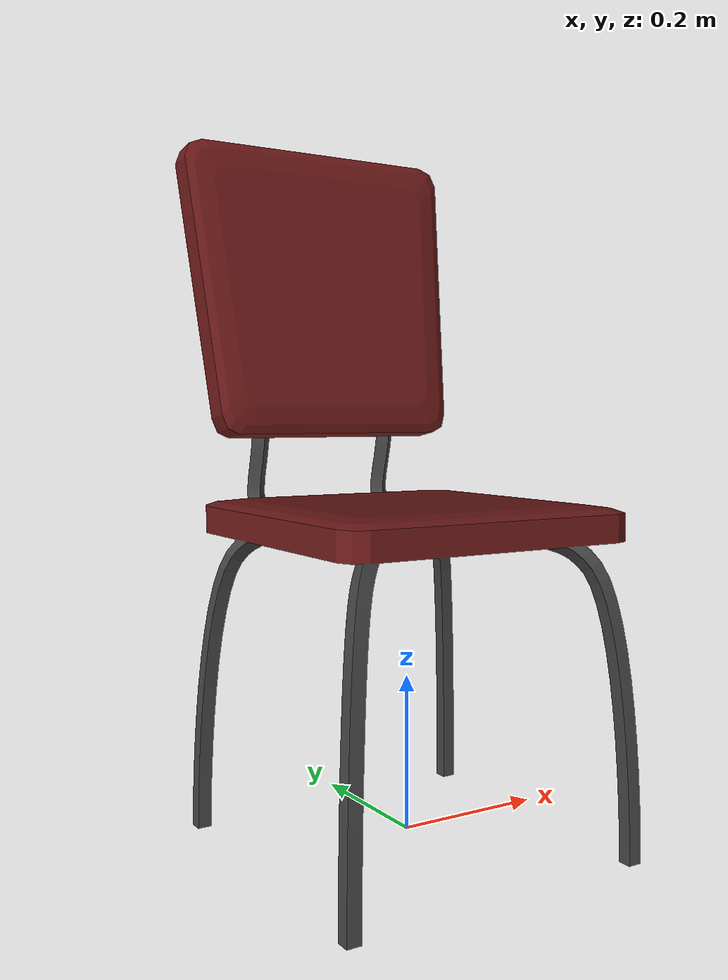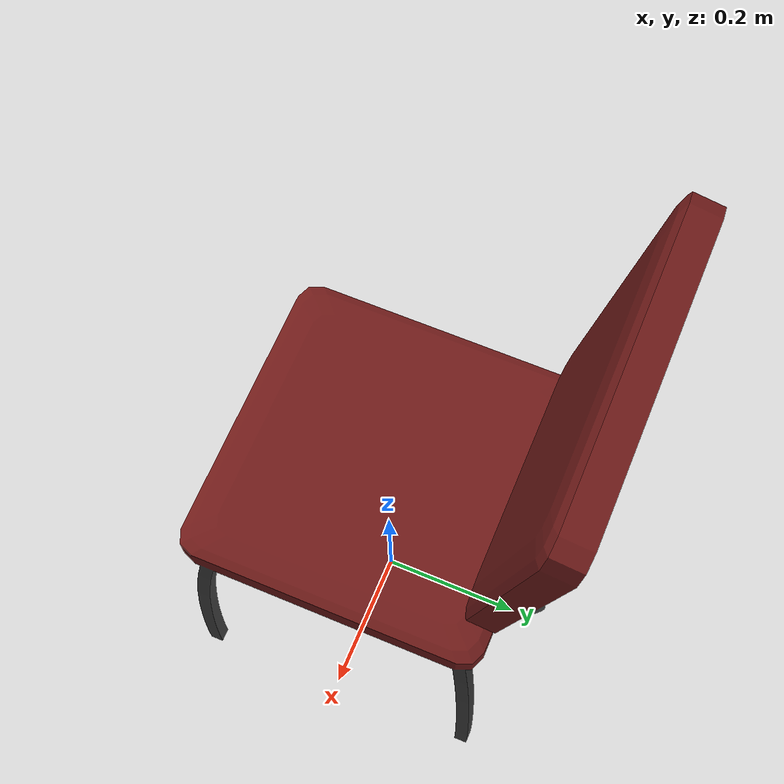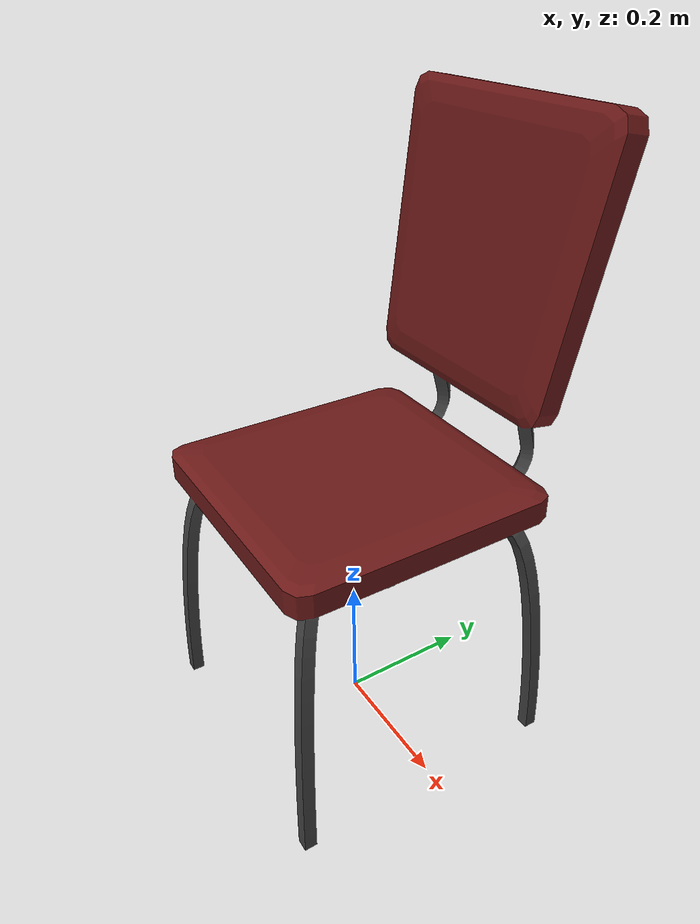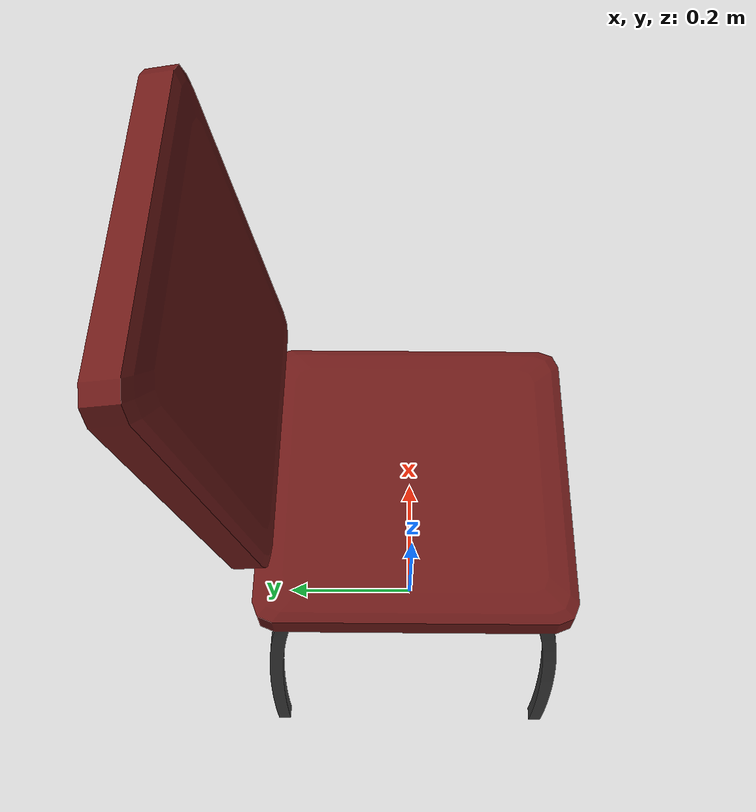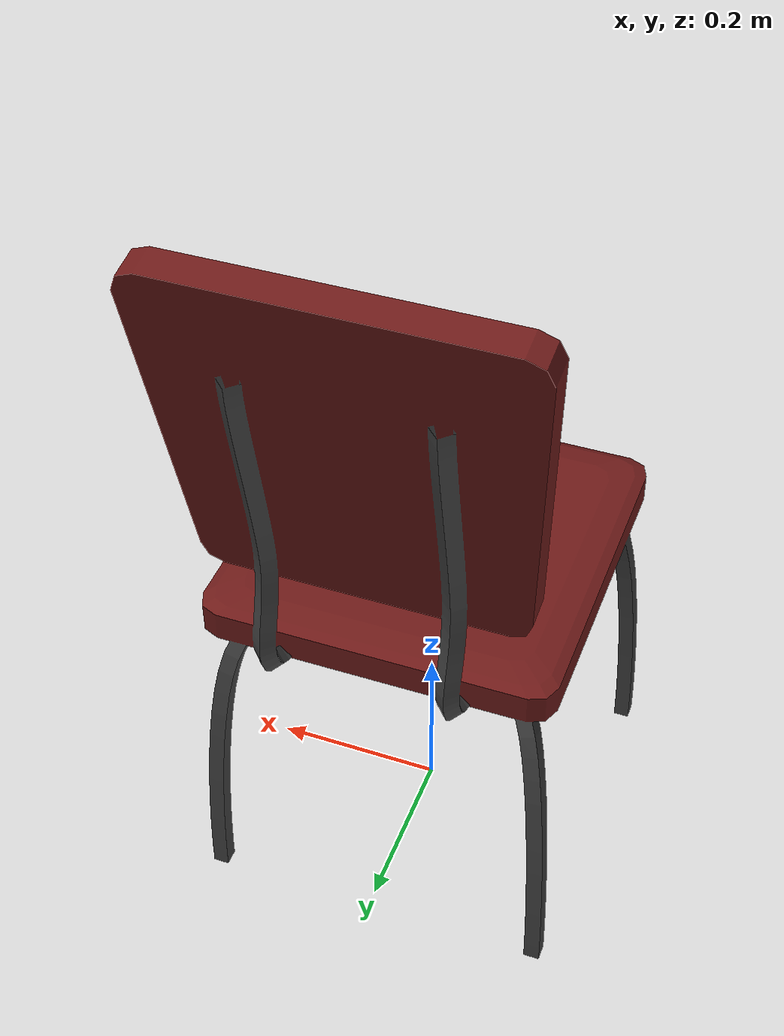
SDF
<?xml version="1.0" ?>

<sdf version="1.5">
  <model name="Chair">
    <static>true</static>
    <link name="Chair">
      <collision name="collision">
	<geometry>
            <mesh>
	      <uri>model://Chair/Chair.dae</uri>
	    </mesh>
          </geometry>
      </collision>
      <visual name="vis">
        <cast_shadows>false</cast_shadows>
	<geometry>
            <mesh>
	      <uri>model://Chair/Chair.dae</uri>
	    </mesh>
          </geometry>
      </visual>
    </link>
  </model>
</sdf>
